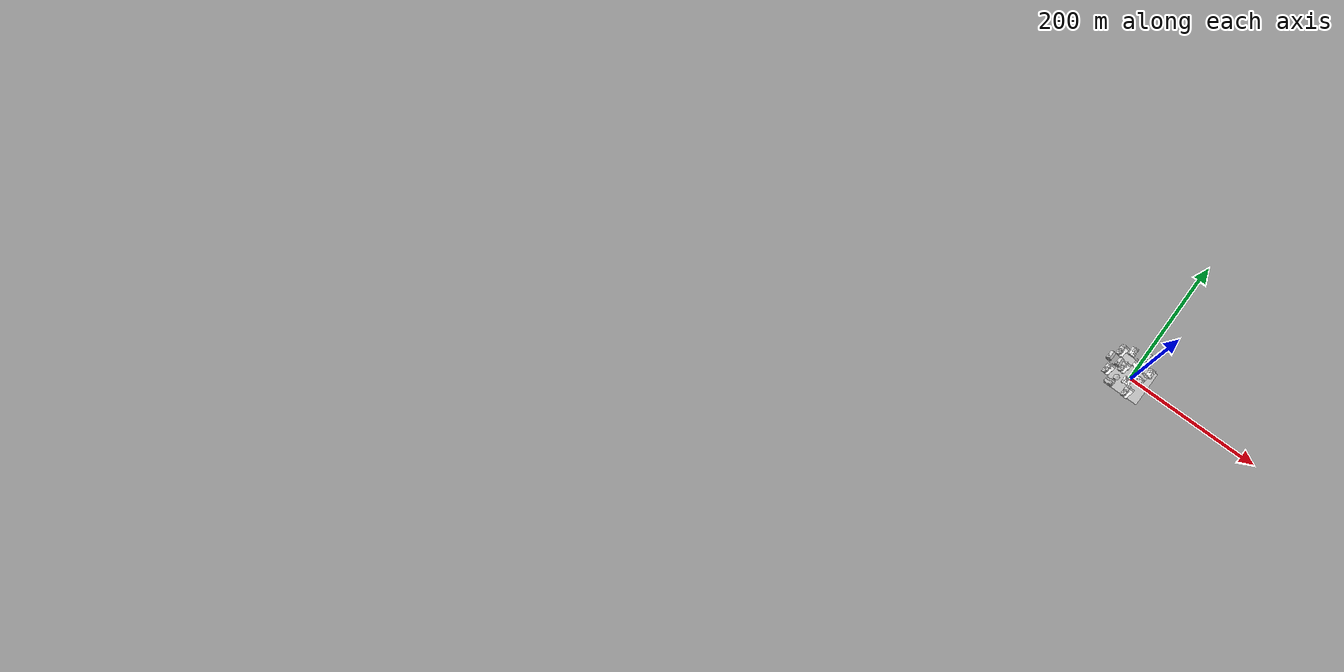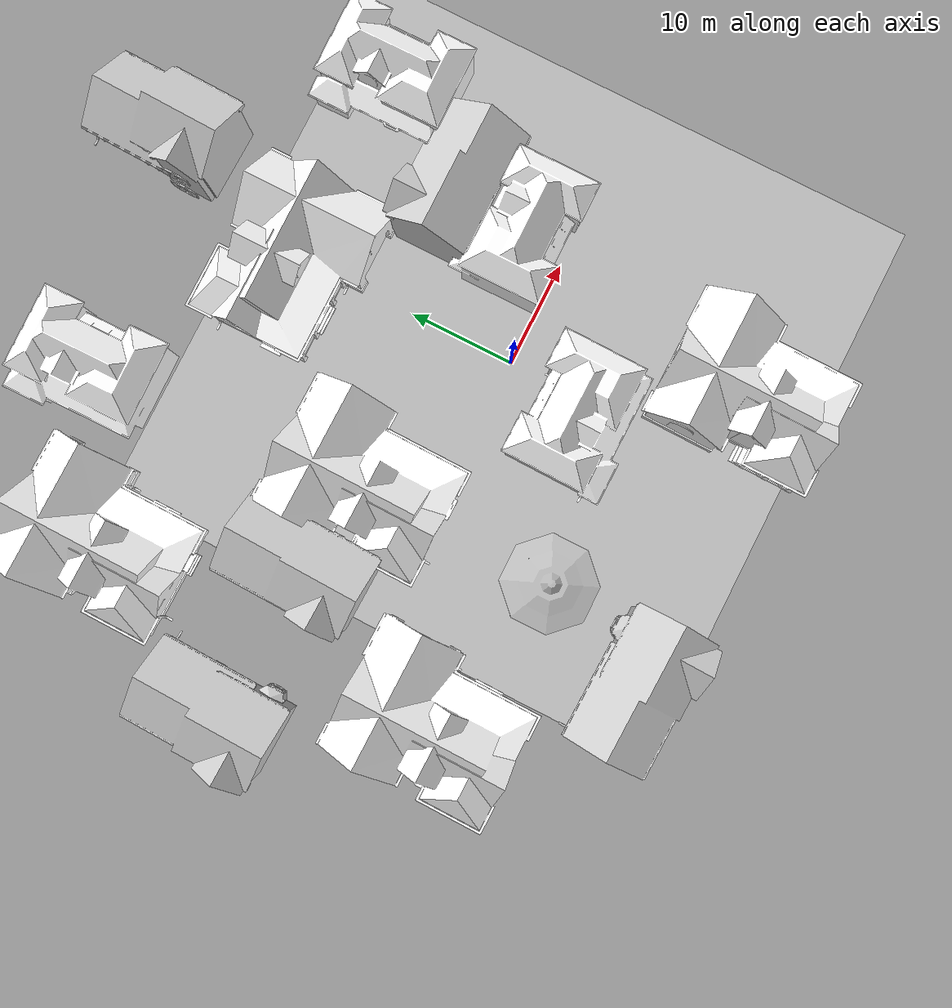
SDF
<sdf version="1.7">
 <world name="default">
  <plugin name="mrs_gazebo_static_transform_republisher_plugin" filename="libMrsGazeboCommonResources_StaticTransformRepublisher.so"/>
  <spherical_coordinates>
   <surface_model>EARTH_WGS84</surface_model>
   <latitude_deg>47.3977</latitude_deg>
   <longitude_deg>8.54559</longitude_deg>
   <elevation>0</elevation>
   <heading_deg>0</heading_deg>
  </spherical_coordinates>
  <physics name="default_physics" default="0" type="ode">
   <ode>
    <solver>
     <type>quick</type>
     <iters>10</iters>
     <sor>1.3</sor>
     <use_dynamic_moi_rescaling>0</use_dynamic_moi_rescaling>
    </solver>
    <constraints>
     <cfm>0</cfm>
     <erp>0.2</erp>
     <contact_max_correcting_vel>1000</contact_max_correcting_vel>
     <contact_surface_layer>0.001</contact_surface_layer>
    </constraints>
   </ode>
   <max_step_size>0.004</max_step_size>
   <real_time_factor>1</real_time_factor>
   <real_time_update_rate>250</real_time_update_rate>
  </physics>
  <scene><shadows>0</shadows><ambient>0.4 0.4 0.4 1</ambient><background>0.7 0.7 0.7 1</background></scene>
  <model name="ground_plane">
   <static>1</static>
   <link name="link">
    <collision name="collision">
     <geometry><plane><normal>0 0 1</normal><size>250 250</size></plane></geometry>
     <surface><contact><ode><min_depth>0.01</min_depth><max_vel>0</max_vel></ode></contact></surface>
    </collision>
    <visual name="grass">
     <cast_shadows>0</cast_shadows>
     <geometry><mesh><uri>file://grass_plane/meshes/grass_plane.dae</uri></mesh></geometry>
    </visual>
   </link>
  </model>
  <model name="the_void">
   <static>1</static>
   <link name="link">
    <pose>0 0 0.1 0 -0 0</pose>
    <visual name="the_void">
     <pose>0 0 2 0 -0 0</pose>
     <geometry><sphere><radius>0.25</radius></sphere></geometry>
     <material>
      <script><uri>file://media/materials/scripts/Gazebo.material</uri><name>Gazebo/Black</name></script>
     </material>
    </visual>
   </link>
   <pose>-1000 -1000 0 0 -0 0</pose>
  </model>
  <plugin name="mrs_gazebo_rviz_cam_synchronizer" filename="libMrsGazeboCommonResources_RvizCameraSynchronizer.so">
   <target_frame_id>gazebo_user_camera</target_frame_id>
   <world_origin_frame_id>uav1/gps_origin</world_origin_frame_id>
   <frame_to_follow>uav1</frame_to_follow>
  </plugin>
  <gravity>0 0 -9.8066</gravity>
  <magnetic_field>6e-06 2.3e-05 -4.2e-05</magnetic_field>
  <atmosphere type="adiabatic"/>
  <light name="user_directional_light_0" type="directional">
   <pose>18.5939 6.77546 1 0 -0 0</pose>
   <diffuse>0.5 0.5 0.5 1</diffuse>
   <specular>0.1 0.1 0.1 1</specular>
   <direction>0.1 0.1 -0.9</direction>
   <attenuation>
    <range>20</range>
    <constant>0.5</constant>
    <linear>0.01</linear>
    <quadratic>0.001</quadratic>
   </attenuation>
   <spot><inner_angle>0</inner_angle><outer_angle>0</outer_angle><falloff>0</falloff></spot>
  </light>
  <light name="user_directional_light_1" type="directional">
   <pose>-30.2986 28.8316 1 0 -0 0</pose>
   <diffuse>0.5 0.5 0.5 1</diffuse>
   <specular>0.1 0.1 0.1 1</specular>
   <direction>0.1 0.1 -0.9</direction>
   <attenuation>
    <range>20</range>
    <constant>0.5</constant>
    <linear>0.01</linear>
    <quadratic>0.001</quadratic>
   </attenuation>
   <spot><inner_angle>0</inner_angle><outer_angle>0</outer_angle><falloff>0</falloff></spot>
  </light>
  <light name="sun" type="directional">
   <pose>14.107 -35.5568 10 0 -0 0</pose>
   <diffuse>0.8 0.8 0.8 1</diffuse>
   <specular>0.2 0.2 0.2 1</specular>
   <attenuation>
    <range>1000</range>
    <constant>0.9</constant>
    <linear>0.01</linear>
    <quadratic>0.001</quadratic>
   </attenuation>
   <direction>-0.5 0.1 -0.9</direction>
   <spot><inner_angle>0</inner_angle><outer_angle>0</outer_angle><falloff>0</falloff></spot>
  </light>
  <model name="House 1">
   <static>1</static>
   <link name="link">
    <collision name="collision">
     <geometry><mesh><uri>model://house_1/meshes/house_1.dae</uri><scale>1.5 1.5 1.5</scale></mesh></geometry>
    </collision>
    <visual name="visual">
     <geometry><mesh><uri>model://house_1/meshes/house_1.dae</uri><scale>1.5 1.5 1.5</scale></mesh></geometry>
     <material>
      <script>
       <uri>model://house_1/materials/scripts</uri>
       <uri>model://house_1/materials/textures</uri>
       <name>House_1/Diffuse</name>
      </script>
      <shader type="normal_map_tangent_space"><normal_map>House_1_Normal.png</normal_map></shader>
     </material>
    </visual>
   </link>
   <pose>-15.9332 6.8796 0 0 -0 1.55586</pose>
  </model>
  <model name="House 2">
   <static>1</static>
   <link name="link">
    <collision name="collision">
     <geometry><mesh><uri>model://house_2/meshes/house_2.dae</uri><scale>1.5 1.5 1.5</scale></mesh></geometry>
    </collision>
    <visual name="visual">
     <geometry><mesh><uri>model://house_2/meshes/house_2.dae</uri><scale>1.5 1.5 1.5</scale></mesh></geometry>
     <material>
      <script>
       <uri>model://house_2/materials/scripts</uri>
       <uri>model://house_2/materials/textures</uri>
       <uri>model://house_1/materials/textures</uri>
       <name>House_2/Diffuse</name>
      </script>
      <shader type="normal_map_tangent_space">
       <normal_map>model://house_1/materials/textures/House_1_Normal.png</normal_map>
      </shader>
     </material>
    </visual>
   </link>
   <pose>9.90919 3.91897 0 0 -0 0</pose>
  </model>
  <model name="House 3">
   <static>1</static>
   <link name="link">
    <collision name="collision">
     <geometry><mesh><uri>model://house_3/meshes/house_3.dae</uri><scale>1.5 1.5 1.5</scale></mesh></geometry>
    </collision>
    <visual name="visual">
     <geometry><mesh><uri>model://house_3/meshes/house_3.dae</uri><scale>1.5 1.5 1.5</scale></mesh></geometry>
     <material>
      <script>
       <uri>model://house_3/materials/scripts</uri>
       <uri>model://house_3/materials/textures</uri>
       <uri>model://house_1/materials/textures</uri>
       <name>House_3/Diffuse</name>
      </script>
      <shader type="normal_map_tangent_space">
       <normal_map>model://house_1/materials/textures/House_1_Normal.png</normal_map>
      </shader>
     </material>
    </visual>
   </link>
   <pose>12.5016 11.4253 0 0 -0 0</pose>
  </model>
  <model name="House 1_0">
   <static>1</static>
   <link name="link">
    <collision name="collision">
     <geometry><mesh><uri>model://house_1/meshes/house_1.dae</uri><scale>1.5 1.5 1.5</scale></mesh></geometry>
    </collision>
    <visual name="visual">
     <geometry><mesh><uri>model://house_1/meshes/house_1.dae</uri><scale>1.5 1.5 1.5</scale></mesh></geometry>
     <material>
      <script>
       <uri>model://house_1/materials/scripts</uri>
       <uri>model://house_1/materials/textures</uri>
       <name>House_1/Diffuse</name>
      </script>
      <shader type="normal_map_tangent_space"><normal_map>House_1_Normal.png</normal_map></shader>
     </material>
    </visual>
   </link>
   <pose>-0.745999 21.701 0 0 -0 0</pose>
  </model>
  <model name="House 1_clone">
   <static>1</static>
   <link name="link">
    <collision name="collision">
     <geometry><mesh><uri>model://house_1/meshes/house_1.dae</uri><scale>1.5 1.5 1.5</scale></mesh></geometry>
    </collision>
    <visual name="visual">
     <geometry><mesh><uri>model://house_1/meshes/house_1.dae</uri><scale>1.5 1.5 1.5</scale></mesh></geometry>
     <material>
      <script>
       <uri>model://house_1/materials/scripts</uri>
       <uri>model://house_1/materials/textures</uri>
       <name>House_1/Diffuse</name>
      </script>
      <shader type="normal_map_tangent_space"><normal_map>House_1_Normal.png</normal_map></shader>
     </material>
    </visual>
   </link>
   <pose>-30.8292 25.1708 0 0 -0 1.55586</pose>
  </model>
  <model name="House 3_clone">
   <static>1</static>
   <link name="link">
    <collision name="collision">
     <geometry><mesh><uri>model://house_3/meshes/house_3.dae</uri><scale>1.5 1.5 1.5</scale></mesh></geometry>
    </collision>
    <visual name="visual">
     <geometry><mesh><uri>model://house_3/meshes/house_3.dae</uri><scale>1.5 1.5 1.5</scale></mesh></geometry>
     <material>
      <script>
       <uri>model://house_3/materials/scripts</uri>
       <uri>model://house_3/materials/textures</uri>
       <uri>model://house_1/materials/textures</uri>
       <name>House_3/Diffuse</name>
      </script>
      <shader type="normal_map_tangent_space">
       <normal_map>model://house_1/materials/textures/House_1_Normal.png</normal_map>
      </shader>
     </material>
    </visual>
   </link>
   <pose>-24.8561 9.00474 0 0 -0 1.54045</pose>
  </model>
  <model name="House 2_clone">
   <static>1</static>
   <link name="link">
    <collision name="collision">
     <geometry><mesh><uri>model://house_2/meshes/house_2.dae</uri><scale>1.5 1.5 1.5</scale></mesh></geometry>
    </collision>
    <visual name="visual">
     <geometry><mesh><uri>model://house_2/meshes/house_2.dae</uri><scale>1.5 1.5 1.5</scale></mesh></geometry>
     <material>
      <script>
       <uri>model://house_2/materials/scripts</uri>
       <uri>model://house_2/materials/textures</uri>
       <uri>model://house_1/materials/textures</uri>
       <name>House_2/Diffuse</name>
      </script>
      <shader type="normal_map_tangent_space">
       <normal_map>model://house_1/materials/textures/House_1_Normal.png</normal_map>
      </shader>
     </material>
    </visual>
   </link>
   <pose>-1.03389 -7.11702 0 0 -0 3.12592</pose>
  </model>
  <model name="gazebo">
   <static>1</static>
   <link name="link">
    <collision name="collision">
     <geometry><mesh><scale>3 3 2.5</scale><uri>model://gazebo/meshes/gazebo.dae</uri></mesh></geometry>
    </collision>
    <visual name="visual">
     <geometry><mesh><scale>3 3 2.5</scale><uri>model://gazebo/meshes/gazebo.dae</uri></mesh></geometry>
    </visual>
   </link>
   <pose>-16.467 -11.8298 0 0 -0 0</pose>
  </model>
  <model name="House 1_clone_clone">
   <static>1</static>
   <link name="link">
    <collision name="collision">
     <geometry><mesh><uri>model://house_1/meshes/house_1.dae</uri><scale>1.5 1.5 1.5</scale></mesh></geometry>
    </collision>
    <visual name="visual">
     <geometry><mesh><uri>model://house_1/meshes/house_1.dae</uri><scale>1.5 1.5 1.5</scale></mesh></geometry>
     <material>
      <script>
       <uri>model://house_1/materials/scripts</uri>
       <uri>model://house_1/materials/textures</uri>
       <name>House_1/Diffuse</name>
      </script>
      <shader type="normal_map_tangent_space"><normal_map>House_1_Normal.png</normal_map></shader>
     </material>
    </visual>
   </link>
   <pose>-32.0272 -7.97864 0 0 -0 1.55586</pose>
  </model>
  <model name="House 2_clone_clone">
   <static>1</static>
   <link name="link">
    <collision name="collision">
     <geometry><mesh><uri>model://house_2/meshes/house_2.dae</uri><scale>1.5 1.5 1.5</scale></mesh></geometry>
    </collision>
    <visual name="visual">
     <geometry><mesh><uri>model://house_2/meshes/house_2.dae</uri><scale>1.5 1.5 1.5</scale></mesh></geometry>
     <material>
      <script>
       <uri>model://house_2/materials/scripts</uri>
       <uri>model://house_2/materials/textures</uri>
       <uri>model://house_1/materials/textures</uri>
       <name>House_2/Diffuse</name>
      </script>
      <shader type="normal_map_tangent_space">
       <normal_map>model://house_1/materials/textures/House_1_Normal.png</normal_map>
      </shader>
     </material>
    </visual>
   </link>
   <pose>-16.954 32.1321 0 0 -0 1.58363</pose>
  </model>
  <model name="House 3_clone_clone">
   <static>1</static>
   <link name="link">
    <collision name="collision">
     <geometry><mesh><uri>model://house_3/meshes/house_3.dae</uri><scale>1.5 1.5 1.5</scale></mesh></geometry>
    </collision>
    <visual name="visual">
     <geometry><mesh><uri>model://house_3/meshes/house_3.dae</uri><scale>1.5 1.5 1.5</scale></mesh></geometry>
     <material>
      <script>
       <uri>model://house_3/materials/scripts</uri>
       <uri>model://house_3/materials/textures</uri>
       <uri>model://house_1/materials/textures</uri>
       <name>House_3/Diffuse</name>
      </script>
      <shader type="normal_map_tangent_space">
       <normal_map>model://house_1/materials/textures/House_1_Normal.png</normal_map>
      </shader>
     </material>
    </visual>
   </link>
   <pose>4.95023 37.733 0 0 -0 1.54045</pose>
  </model>
  <model name="House 2_clone_clone_clone">
   <static>1</static>
   <link name="link">
    <collision name="collision">
     <geometry><mesh><uri>model://house_2/meshes/house_2.dae</uri><scale>1.5 1.5 1.5</scale></mesh></geometry>
    </collision>
    <visual name="visual">
     <geometry><mesh><uri>model://house_2/meshes/house_2.dae</uri><scale>1.5 1.5 1.5</scale></mesh></geometry>
     <material>
      <script>
       <uri>model://house_2/materials/scripts</uri>
       <uri>model://house_2/materials/textures</uri>
       <uri>model://house_1/materials/textures</uri>
       <name>House_2/Diffuse</name>
      </script>
      <shader type="normal_map_tangent_space">
       <normal_map>model://house_1/materials/textures/House_1_Normal.png</normal_map>
      </shader>
     </material>
    </visual>
   </link>
   <pose>18.8371 20.17 0 0 -0 1.58363</pose>
  </model>
  <model name="House 3_clone_clone_0">
   <static>1</static>
   <link name="link">
    <collision name="collision">
     <geometry><mesh><uri>model://house_3/meshes/house_3.dae</uri><scale>1.5 1.5 1.5</scale></mesh></geometry>
    </collision>
    <visual name="visual">
     <geometry><mesh><uri>model://house_3/meshes/house_3.dae</uri><scale>1.5 1.5 1.5</scale></mesh></geometry>
     <material>
      <script>
       <uri>model://house_3/materials/scripts</uri>
       <uri>model://house_3/materials/textures</uri>
       <uri>model://house_1/materials/textures</uri>
       <name>House_3/Diffuse</name>
      </script>
      <shader type="normal_map_tangent_space">
       <normal_map>model://house_1/materials/textures/House_1_Normal.png</normal_map>
      </shader>
     </material>
    </visual>
   </link>
   <pose>-21.6653 -22.923 0 0 -0 3.10943</pose>
  </model>
  <model name="House 3_clone_clone_2">
   <static>1</static>
   <link name="link">
    <collision name="collision">
     <geometry><mesh><uri>model://house_3/meshes/house_3.dae</uri><scale>1.5 1.5 1.5</scale></mesh></geometry>
    </collision>
    <visual name="visual">
     <geometry><mesh><uri>model://house_3/meshes/house_3.dae</uri><scale>1.5 1.5 1.5</scale></mesh></geometry>
     <material>
      <script>
       <uri>model://house_3/materials/scripts</uri>
       <uri>model://house_3/materials/textures</uri>
       <uri>model://house_1/materials/textures</uri>
       <name>House_3/Diffuse</name>
      </script>
      <shader type="normal_map_tangent_space">
       <normal_map>model://house_1/materials/textures/House_1_Normal.png</normal_map>
      </shader>
     </material>
    </visual>
   </link>
   <pose>-39.5718 10.0341 0 0 -0 1.54045</pose>
  </model>
  <model name="House 1_clone_clone_clone">
   <static>1</static>
   <link name="link">
    <collision name="collision">
     <geometry><mesh><uri>model://house_1/meshes/house_1.dae</uri><scale>1.5 1.5 1.5</scale></mesh></geometry>
    </collision>
    <visual name="visual">
     <geometry><mesh><uri>model://house_1/meshes/house_1.dae</uri><scale>1.5 1.5 1.5</scale></mesh></geometry>
     <material>
      <script>
       <uri>model://house_1/materials/scripts</uri>
       <uri>model://house_1/materials/textures</uri>
       <name>House_1/Diffuse</name>
      </script>
      <shader type="normal_map_tangent_space"><normal_map>House_1_Normal.png</normal_map></shader>
     </material>
    </visual>
   </link>
   <pose>6.52706 -20.2377 0 0 -0 1.55586</pose>
  </model>
 </world>
</sdf>
